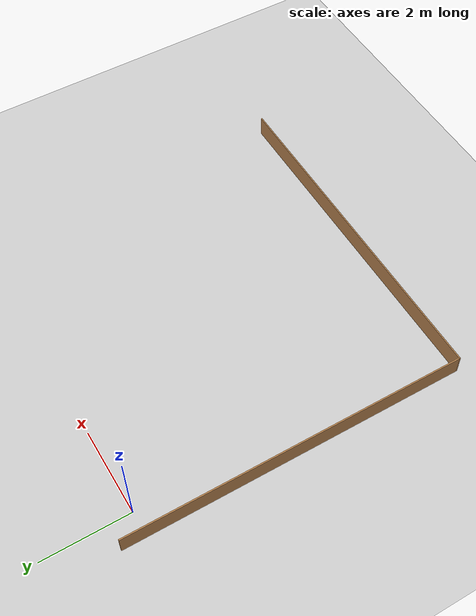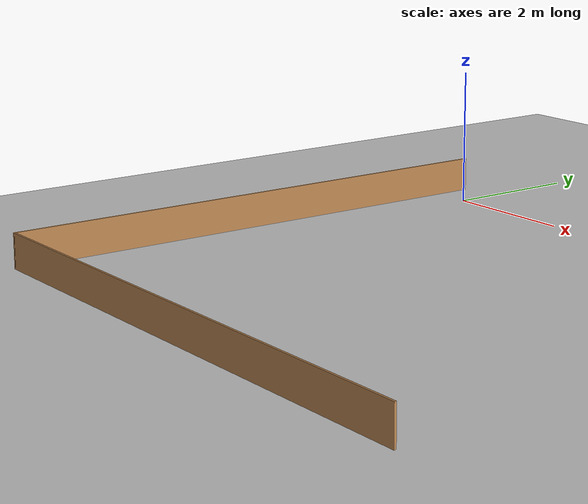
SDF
<sdf version="1.7">
 <world name="default">
  <model name="ground_plane">
   <static>1</static>
   <link name="link">
    <collision name="collision">
     <geometry><plane><normal>0 0 1</normal><size>100 100</size></plane></geometry>
     <surface>
      <contact><collide_bitmask>65535</collide_bitmask></contact>
      <friction><ode><mu>100</mu><mu2>50</mu2></ode></friction>
     </surface>
    </collision>
    <visual name="visual">
     <cast_shadows>0</cast_shadows>
     <geometry><plane><normal>0 0 1</normal><size>100 100</size></plane></geometry>
     <material>
      <script><uri>file://media/materials/scripts/gazebo.material</uri><name>Gazebo/Grey</name></script>
     </material>
    </visual>
   </link>
  </model>
  <model name="arena">
   <pose>3.40282 -3.41988 0 0 0 -1.57675</pose>
   <link name="Wall_2">
    <collision name="Wall_2_Collision">
     <geometry><box><size>8.03201 0.03 0.5</size></box></geometry>
     <pose>0 0 0.25 0 -0 0</pose>
    </collision>
    <visual name="Wall_2_Visual">
     <pose>0 0 0.25 0 -0 0</pose>
     <geometry><box><size>8.03201 0.03 0.5</size></box></geometry>
     <material>
      <script><uri>file://media/materials/scripts/gazebo.material</uri><name>Gazebo/Wood</name></script>
      <ambient>1 1 1 1</ambient>
     </material>
     <meta><layer>0</layer></meta>
    </visual>
    <pose>3.925 -0.002226 0 0 -0 -1.56942</pose>
   </link>
   <link name="Wall_3">
    <collision name="Wall_3_Collision">
     <geometry><box><size>7.88 0.03 0.5</size></box></geometry>
     <pose>0 0 0.25 0 -0 0</pose>
    </collision>
    <visual name="Wall_3_Visual">
     <pose>0 0 0.25 0 -0 0</pose>
     <geometry><box><size>7.88 0.03 0.5</size></box></geometry>
     <material>
      <script><uri>file://media/materials/scripts/gazebo.material</uri><name>Gazebo/Wood</name></script>
      <ambient>1 1 1 1</ambient>
     </material>
     <meta><layer>0</layer></meta>
    </visual>
    <pose>0.0055 -4.00323 0 0 -0 3.14159</pose>
   </link>
   <static>1</static>
  </model>
 </world>
</sdf>
